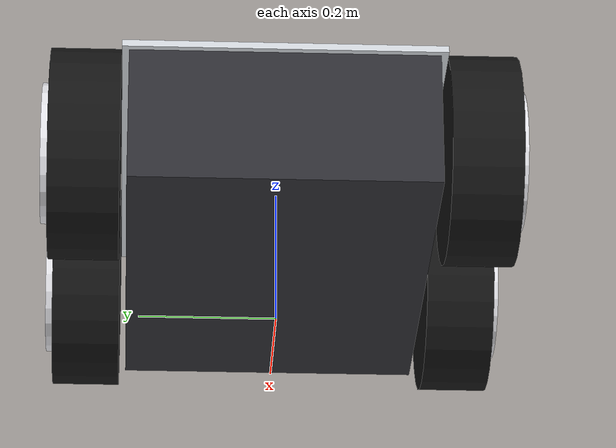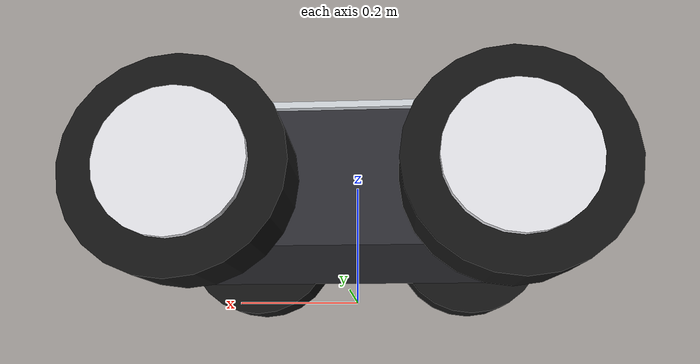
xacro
<?xml version="1.0"?>
<robot name="smartcart" xmlns:xacro="http://www.ros.org/wiki/xacro">

  <!-- Materials & Colors matching cart.jpg reference design                -->
  <material name="metallic_dark">
    <color rgba="0.18 0.18 0.20 1.0"/>
  </material>

  <material name="brushed_aluminum">
    <color rgba="0.82 0.84 0.86 1.0"/>
  </material>

  <material name="tire_rubber">
    <color rgba="0.08 0.08 0.08 1.0"/>
  </material>

  <material name="rim_silver">
    <color rgba="0.90 0.90 0.92 1.0"/>
  </material>

  <material name="sensor_red">
    <color rgba="0.85 0.15 0.15 1.0"/>
  </material>

  <material name="metal_hardware">
    <color rgba="0.75 0.75 0.78 1.0"/>
  </material>

  <!-- Base Footprint (Root dummy link for KDL & planar navigation)         -->
  <link name="base_footprint"/>

  <joint name="base_footprint_joint" type="fixed">
    <parent link="base_footprint"/>
    <child link="base_link"/>
    <origin xyz="0 0 0.15" rpy="0 0 0"/>
  </joint>

  <!-- Base Link: Heavy-duty 4WD Chassis matching cart.jpg                  -->
  <link name="base_link">
    <inertial>
      <!-- Center of mass lowered for rock-solid stability -->
      <origin xyz="0 0 -0.02" rpy="0 0 0"/>
      <mass value="15.0"/>
      <inertia ixx="0.3136" ixy="0.0" ixz="0.0"
               iyy="0.6730" iyz="0.0"
               izz="0.8656"/>
    </inertial>

    <!-- Main Enclosure Body (Dark Gunmetal Box) -->
    <visual>
      <origin xyz="0 0 0.01" rpy="0 0 0"/>
      <geometry>
        <box size="0.66 0.44 0.20"/>
      </geometry>
      <material name="metallic_dark"/>
    </visual>

    <!-- Top Brushed Aluminum Deck Plate -->
    <visual>
      <origin xyz="0 0 0.115" rpy="0 0 0"/>
      <geometry>
        <box size="0.68 0.46 0.01"/>
      </geometry>
      <material name="brushed_aluminum"/>
    </visual>

    <!-- Front Hitch / Eyelet Hardware (Visual Detail from cart.jpg) -->
    <visual>
      <origin xyz="0.335 0.0 -0.04" rpy="1.570796 0 0"/>
      <geometry>
        <cylinder radius="0.02" length="0.015"/>
      </geometry>
      <material name="metal_hardware"/>
    </visual>

    <!-- Front Switch / Port Detail -->
    <visual>
      <origin xyz="0.335 0.08 0.02" rpy="0 1.570796 0"/>
      <geometry>
        <cylinder radius="0.012" length="0.03"/>
      </geometry>
      <material name="metal_hardware"/>
    </visual>

    <!-- Chassis Collision Geometry (Elevated 5cm above ground clearance) -->
    <collision>
      <origin xyz="0 0 0.01" rpy="0 0 0"/>
      <geometry>
        <box size="0.66 0.44 0.19"/>
      </geometry>
    </collision>
  </link>

  <gazebo reference="base_link">
    <material>
      <ambient>0.18 0.18 0.20 1.0</ambient>
      <diffuse>0.20 0.20 0.22 1.0</diffuse>
      <specular>0.4 0.4 0.45 1.0</specular>
    </material>
  </gazebo>

  <!-- Xacro Macro for Rugged 4WD Wheel Assemblies                          -->
  <xacro:macro name="skid_wheel" params="prefix x_reflect y_reflect">
    <link name="${prefix}_wheel_link">
      <inertial>
        <origin xyz="0 0 0" rpy="0 0 0"/>
        <mass value="2.0"/>
        <inertia ixx="0.01292" ixy="0.0" ixz="0.0"
                 iyy="0.02250" iyz="0.0"
                 izz="0.01292"/>
      </inertial>

      <!-- Outer Tire Tread (Dark Rugged Rubber) -->
      <visual>
        <origin xyz="0 0 0" rpy="1.57079632679 0 0"/>
        <geometry>
          <cylinder radius="0.15" length="0.10"/>
        </geometry>
        <material name="tire_rubber"/>
      </visual>

      <!-- Inner Wheel Rim / Dish (Silver/White Dish from cart.jpg) -->
      <visual>
        <origin xyz="0 ${y_reflect * 0.01} 0" rpy="1.57079632679 0 0"/>
        <geometry>
          <cylinder radius="0.10" length="0.102"/>
        </geometry>
        <material name="rim_silver"/>
      </visual>

      <!-- Wheel Collision Cylinder -->
      <collision>
        <origin xyz="0 0 0" rpy="1.57079632679 0 0"/>
        <geometry>
          <cylinder radius="0.15" length="0.10"/>
        </geometry>
      </collision>
    </link>

    <joint name="${prefix}_wheel_joint" type="continuous">
      <parent link="base_link"/>
      <child link="${prefix}_wheel_link"/>
      <origin xyz="${x_reflect * 0.22} ${y_reflect * 0.28} 0.0" rpy="0 0 0"/>
      <axis xyz="0 1 0"/>
      <dynamics damping="0.05" friction="0.02"/>
    </joint>

    <gazebo reference="${prefix}_wheel_link">
      <mu1>1.0</mu1>
      <mu2>0.10</mu2>
      <material>
        <ambient>0.08 0.08 0.08 1.0</ambient>
        <diffuse>0.10 0.10 0.10 1.0</diffuse>
        <specular>0.2 0.2 0.2 1.0</specular>
      </material>
    </gazebo>
  </xacro:macro>

  <!-- Instantiate 4 Wheels -->
  <xacro:skid_wheel prefix="front_left"  x_reflect="1"  y_reflect="1"/>
  <xacro:skid_wheel prefix="rear_left"   x_reflect="-1" y_reflect="1"/>
  <xacro:skid_wheel prefix="front_right" x_reflect="1"  y_reflect="-1"/>
  <xacro:skid_wheel prefix="rear_right"  x_reflect="-1" y_reflect="-1"/>

  <!-- 2D Planar LiDAR Sensor (Mounted high on top aluminum deck)            -->
  <link name="lidar_link">
    <inertial>
      <origin xyz="0 0 0" rpy="0 0 0"/>
      <mass value="0.25"/>
      <inertia ixx="0.0002" ixy="0.0" ixz="0.0"
               iyy="0.0002" iyz="0.0"
               izz="0.0003"/>
    </inertial>
    <visual>
      <origin xyz="0 0 0" rpy="0 0 0"/>
      <geometry>
        <cylinder radius="0.045" length="0.04"/>
      </geometry>
      <material name="sensor_red"/>
    </visual>
    <collision>
      <origin xyz="0 0 0" rpy="0 0 0"/>
      <geometry>
        <cylinder radius="0.045" length="0.04"/>
      </geometry>
    </collision>
  </link>

  <joint name="lidar_joint" type="fixed">
    <parent link="base_link"/>
    <child link="lidar_link"/>
    <origin xyz="0.22 0 0.14" rpy="0 0 0"/>
  </joint>

  <gazebo reference="lidar_link">
    <sensor name="lidar" type="gpu_lidar">
      <topic>/scan</topic>
      <update_rate>10</update_rate>
      <lidar>
        <scan>
          <horizontal>
            <samples>360</samples>
            <resolution>1</resolution>
            <min_angle>-3.14159265</min_angle>
            <max_angle>3.14159265</max_angle>
          </horizontal>
          <vertical>
            <samples>1</samples>
            <resolution>1</resolution>
            <min_angle>0</min_angle>
            <max_angle>0</max_angle>
          </vertical>
        </scan>
        <range>
          <min>0.15</min>
          <max>10.0</max>
          <resolution>0.01</resolution>
        </range>
      </lidar>
      <always_on>1</always_on>
      <visualize>true</visualize>
    </sensor>
    <material>
      <ambient>0.85 0.15 0.15 1.0</ambient>
      <diffuse>0.85 0.15 0.15 1.0</diffuse>
      <specular>0.3 0.3 0.3 1.0</specular>
    </material>
  </gazebo>

  <!-- Forward Camera Sensor (Front face centered)                           -->
  <link name="camera_link">
    <inertial>
      <origin xyz="0 0 0" rpy="0 0 0"/>
      <mass value="0.1"/>
      <inertia ixx="0.00004" ixy="0.0" ixz="0.0"
               iyy="0.00004" iyz="0.0"
               izz="0.00004"/>
    </inertial>
    <visual>
      <origin xyz="0 0 0" rpy="0 0 0"/>
      <geometry>
        <box size="0.04 0.04 0.04"/>
      </geometry>
      <material name="metallic_dark"/>
    </visual>
    <collision>
      <origin xyz="0 0 0" rpy="0 0 0"/>
      <geometry>
        <box size="0.04 0.04 0.04"/>
      </geometry>
    </collision>
  </link>

  <joint name="camera_joint" type="fixed">
    <parent link="base_link"/>
    <child link="camera_link"/>
    <origin xyz="0.34 0 0.02" rpy="0 0 0"/>
  </joint>

  <gazebo reference="camera_link">
    <sensor name="camera" type="camera">
      <topic>/camera/image_raw</topic>
      <update_rate>10</update_rate>
      <camera>
        <horizontal_fov>1.047</horizontal_fov>
        <image>
          <width>320</width>
          <height>240</height>
          <format>R8G8B8</format>
        </image>
        <clip>
          <near>0.1</near>
          <far>10.0</far>
        </clip>
      </camera>
      <always_on>1</always_on>
      <visualize>false</visualize>
    </sensor>
    <material>
      <ambient>0.2 0.2 0.2 1.0</ambient>
      <diffuse>0.2 0.2 0.2 1.0</diffuse>
      <specular>0.2 0.2 0.2 1.0</specular>
    </material>
  </gazebo>

  <!-- Gazebo Harmonic 4WD Skid-Steer DiffDrive System Plugin               -->
  <gazebo>
    <plugin
      filename="gz-sim-diff-drive-system"
      name="gz::sim::systems::DiffDrive">
      <!-- 4WD Joint configuration -->
      <left_joint>front_left_wheel_joint</left_joint>
      <left_joint>rear_left_wheel_joint</left_joint>
      <right_joint>front_right_wheel_joint</right_joint>
      <right_joint>rear_right_wheel_joint</right_joint>
      <wheel_separation>0.56</wheel_separation>
      <wheel_radius>0.15</wheel_radius>
      <topic>/cmd_vel</topic>
      <odom_topic>/wheel/odometry</odom_topic>
      <frame_id>odom</frame_id>
      <child_frame_id>base_footprint</child_frame_id>
      <odom_publisher_frequency>30</odom_publisher_frequency>
      <tf_topic>/tf</tf_topic>
      <max_linear_acceleration>2.5</max_linear_acceleration>
      <max_angular_acceleration>5.0</max_angular_acceleration>
    </plugin>

    <plugin
      filename="gz-sim-joint-state-publisher-system"
      name="gz::sim::systems::JointStatePublisher">
      <topic>/joint_states</topic>
    </plugin>
  </gazebo>

</robot>
